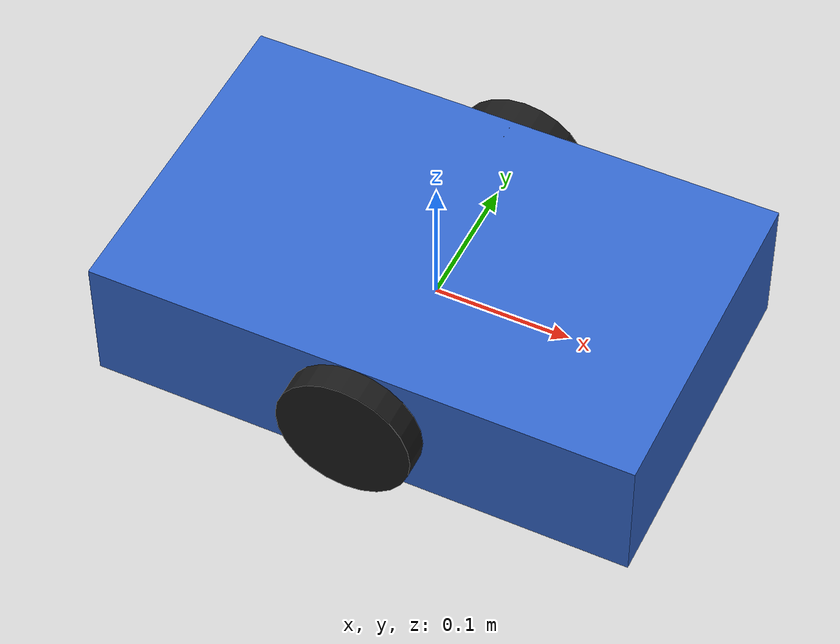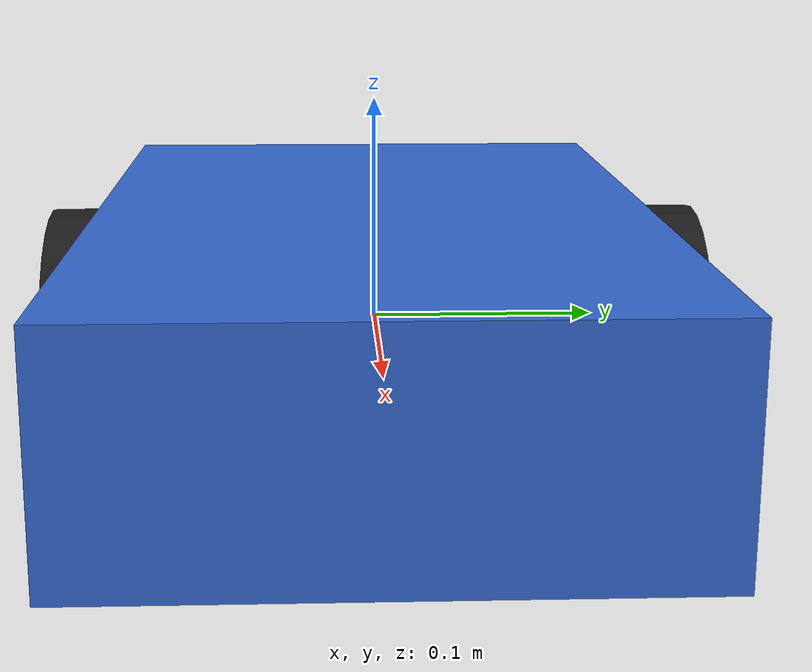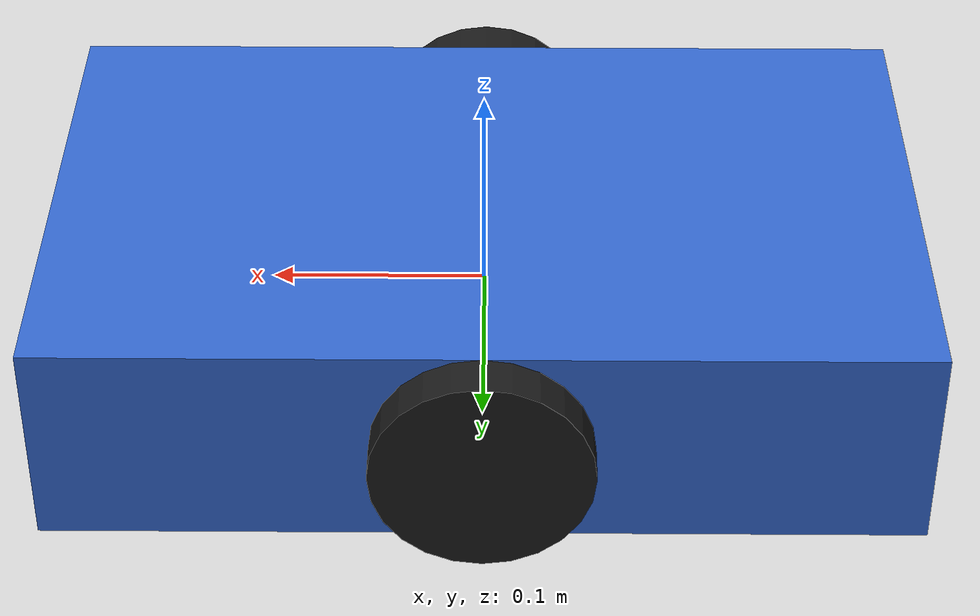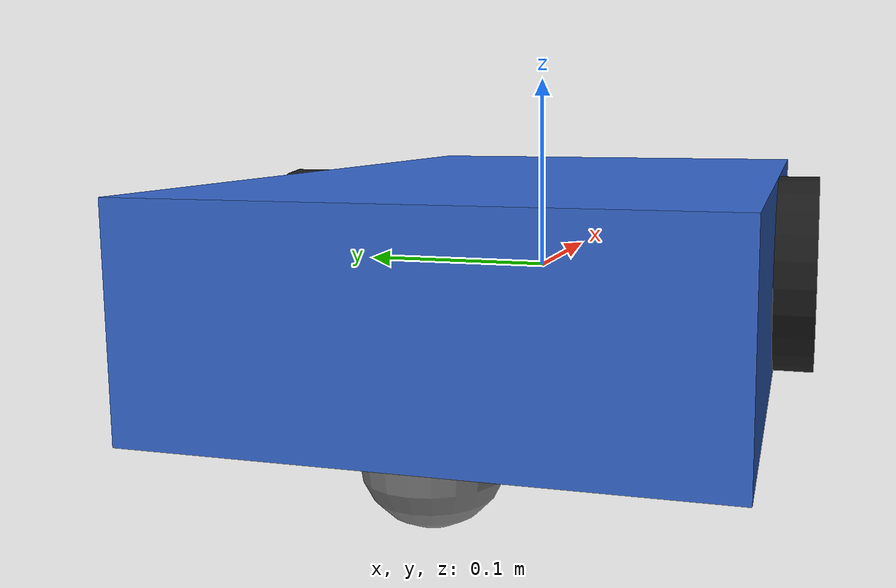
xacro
<?xml version="1.0"?>
<!--
  This is the XACRO file for our simple differential drive robot, the Pathfinder.
  It defines the physical structure of the robot using links and joints.
-->
<robot xmlns:xacro="http://www.ros.org/wiki/xacro" name="pathfinder">

  <!-- 1. Constants & Properties -->
  <!-- Define reusable constants for dimensions. This is a major advantage of XACRO. -->
  <xacro:property name="chassis_length" value="0.4"/>
  <xacro:property name="chassis_width" value="0.25"/>
  <xacro:property name="chassis_height" value="0.1"/>
  <xacro:property name="wheel_radius" value="0.05"/>
  <xacro:property name="wheel_thickness" value="0.04"/>
  <xacro:property name="caster_wheel_radius" value="0.03"/>

  <!-- 2. Base Link (Chassis) -->
  <!-- The base_link is the main body of the robot, the parent of all other links. -->
  <link name="base_link">
    <visual>
      <geometry>
        <box size="${chassis_length} ${chassis_width} ${chassis_height}"/>
      </geometry>
      <material name="blue">
        <color rgba="0.2 0.4 0.8 1.0"/>
      </material>
    </visual>
  </link>

  <!-- 3. Right Wheel -->
  <link name="right_wheel_link">
    <visual>
      <origin rpy="1.5707 0 0"/> <!-- Rotate the cylinder to be a wheel -->
      <geometry>
        <cylinder radius="${wheel_radius}" length="${wheel_thickness}"/>
      </geometry>
      <material name="black">
        <color rgba="0.1 0.1 0.1 1.0"/>
      </material>
    </visual>
  </link>

  <joint name="right_wheel_joint" type="continuous">
    <parent link="base_link"/>
    <child link="right_wheel_link"/>
    <origin xyz="0 -${chassis_width/2} 0" rpy="0 0 0"/>
    <axis xyz="0 1 0"/>
  </joint>

  <!-- 4. Left Wheel -->
  <link name="left_wheel_link">
    <visual>
      <origin rpy="1.5707 0 0"/> <!-- Rotate the cylinder to be a wheel -->
      <geometry>
        <cylinder radius="${wheel_radius}" length="${wheel_thickness}"/>
      </geometry>
      <material name="black"/> <!-- Re-use the 'black' material -->
    </visual>
  </link>

  <joint name="left_wheel_joint" type="continuous">
    <parent link="base_link"/>
    <child link="left_wheel_link"/>
    <origin xyz="0 ${chassis_width/2} 0" rpy="0 0 0"/>
    <axis xyz="0 1 0"/>
  </joint>

  <!-- 5. Caster Wheel -->
  <link name="caster_wheel_link">
    <visual>
      <geometry>
        <sphere radius="${caster_wheel_radius}"/>
      </geometry>
      <material name="grey">
        <color rgba="0.5 0.5 0.5 1.0"/>
      </material>
    </visual>
  </link>

  <joint name="caster_wheel_joint" type="fixed">
    <parent link="base_link"/>
    <child link="caster_wheel_link"/>
    <origin xyz="-${chassis_length/2 - caster_wheel_radius} 0 -${chassis_height/2}"/>
  </joint>

</robot>
